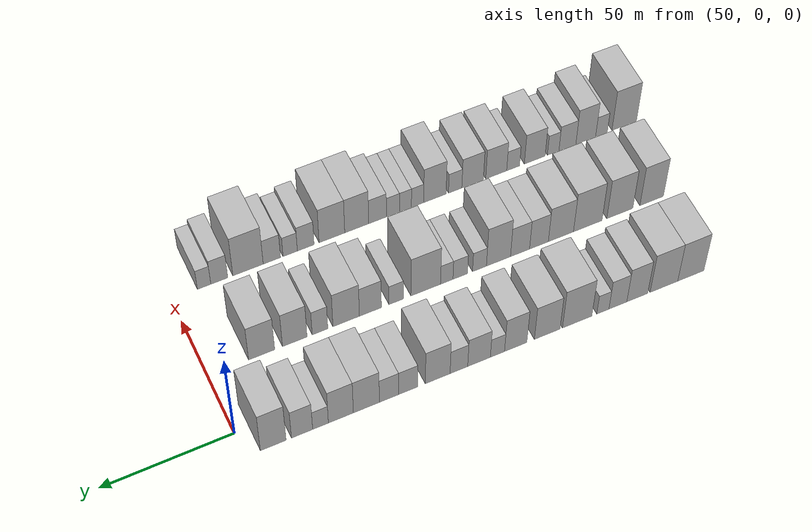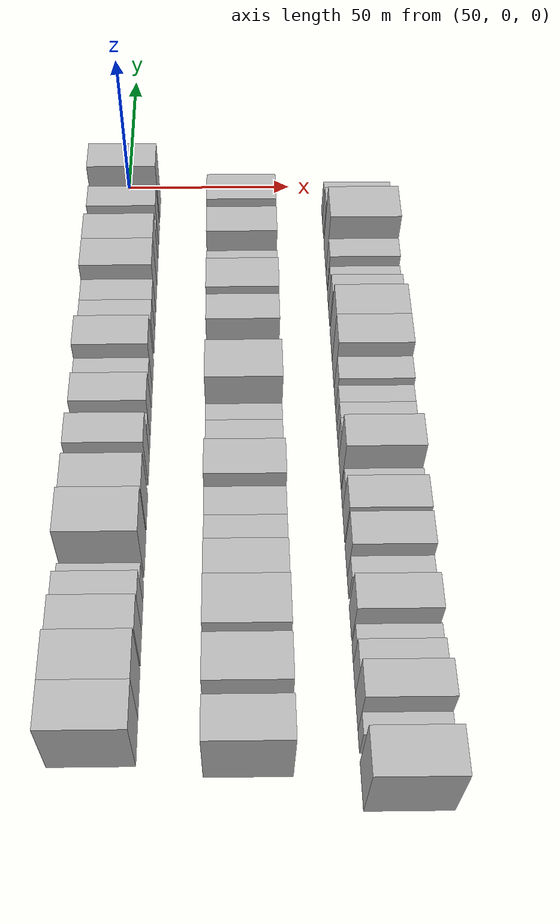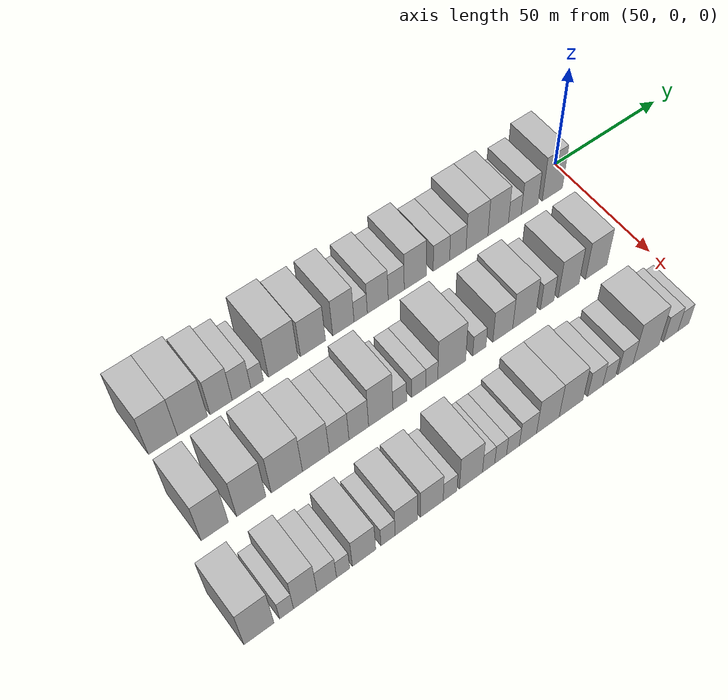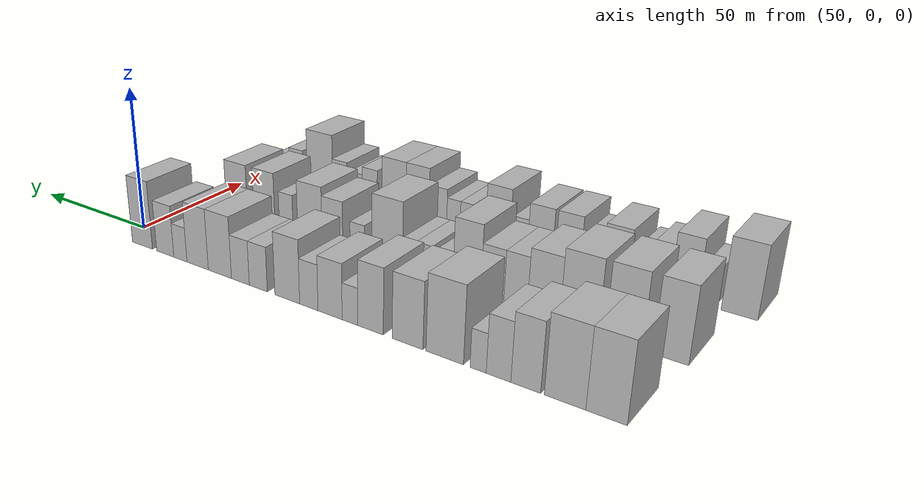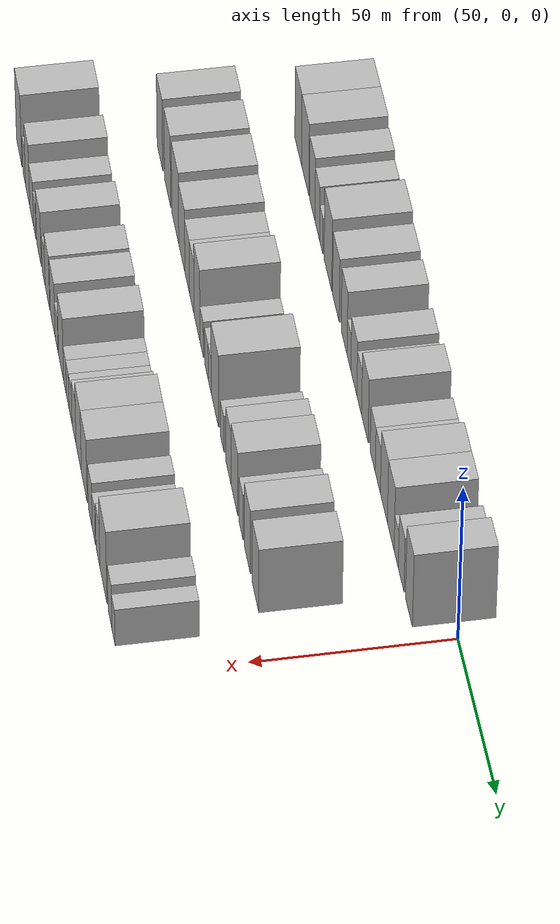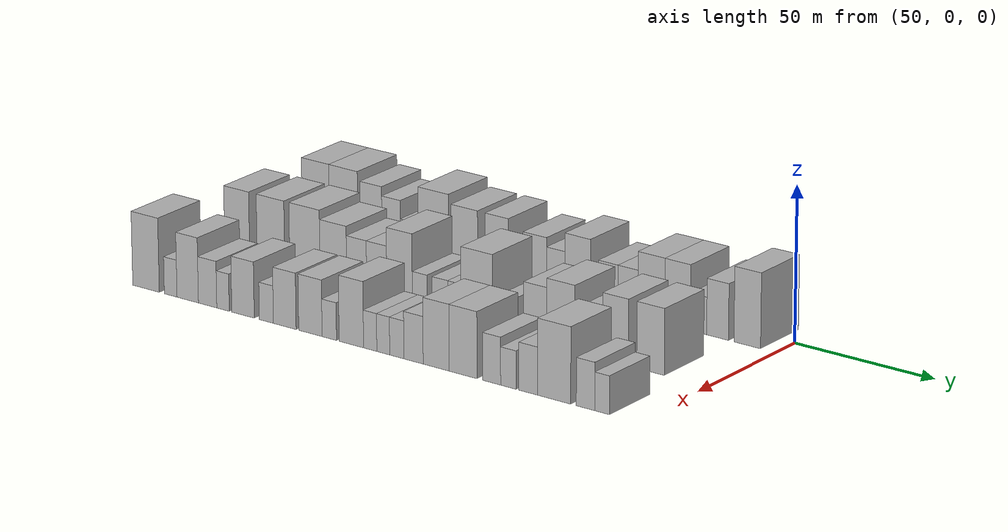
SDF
<sdf version="1.6">
 <world name="default">
  <model name="building_20">
   <static>1</static>
   <pose>50.0000 -174.9886 0 0.000000 0.000000 0.000000</pose>
   <link name="link">
    <pose>0 0 12.00 0 0 0</pose>
    <collision name="collision"><geometry><box><size>20.0000 10.8670 24.0000</size></box></geometry></collision>
    <visual name="visual">
     <cast_shadows>0</cast_shadows>
     <geometry><box><size>20.0000 10.8670 24.0000</size></box></geometry>
     <material>
      <script>
       <uri>model://HANNAS_wall/materials/scripts</uri>
       <uri>model://HANNAS_wall/materials/textures</uri>
       <name>vrc/HANNAS_wall</name>
      </script>
     </material>
    </visual>
   </link>
  </model>
  <model name="building_21">
   <static>1</static>
   <pose>50.0000 -163.8630 0 0.000000 0.000000 0.000000</pose>
   <link name="link">
    <pose>0 0 12.00 0 0 0</pose>
    <collision name="collision"><geometry><box><size>20.0000 11.3841 24.0000</size></box></geometry></collision>
    <visual name="visual">
     <cast_shadows>0</cast_shadows>
     <geometry><box><size>20.0000 11.3841 24.0000</size></box></geometry>
     <material>
      <script>
       <uri>model://HANNAS_wall/materials/scripts</uri>
       <uri>model://HANNAS_wall/materials/textures</uri>
       <name>vrc/HANNAS_wall</name>
      </script>
     </material>
    </visual>
   </link>
  </model>
  <model name="building_22">
   <static>1</static>
   <pose>50.0000 -152.8875 0 0.000000 0.000000 0.000000</pose>
   <link name="link">
    <pose>0 0 10.50 0 0 0</pose>
    <collision name="collision"><geometry><box><size>20.0000 8.5671 21.0000</size></box></geometry></collision>
    <visual name="visual">
     <cast_shadows>0</cast_shadows>
     <geometry><box><size>20.0000 8.5671 21.0000</size></box></geometry>
     <material>
      <script>
       <uri>model://HANNAS_wall/materials/scripts</uri>
       <uri>model://HANNAS_wall/materials/textures</uri>
       <name>vrc/HANNAS_wall</name>
      </script>
     </material>
    </visual>
   </link>
  </model>
  <model name="building_23">
   <static>1</static>
   <pose>50.0000 -144.9525 0 0.000000 0.000000 0.000000</pose>
   <link name="link">
    <pose>0 0 9.00 0 0 0</pose>
    <collision name="collision"><geometry><box><size>20.0000 7.3028 18.0000</size></box></geometry></collision>
    <visual name="visual">
     <cast_shadows>0</cast_shadows>
     <geometry><box><size>20.0000 7.3028 18.0000</size></box></geometry>
     <material>
      <script>
       <uri>model://HANNAS_wall/materials/scripts</uri>
       <uri>model://HANNAS_wall/materials/textures</uri>
       <name>vrc/HANNAS_wall</name>
      </script>
     </material>
    </visual>
   </link>
  </model>
  <model name="building_24">
   <static>1</static>
   <pose>50.0000 -138.8365 0 0.000000 0.000000 0.000000</pose>
   <link name="link">
    <pose>0 0 6.00 0 0 0</pose>
    <collision name="collision"><geometry><box><size>20.0000 4.9293 12.0000</size></box></geometry></collision>
    <visual name="visual">
     <cast_shadows>0</cast_shadows>
     <geometry><box><size>20.0000 4.9293 12.0000</size></box></geometry>
     <material>
      <script>
       <uri>model://HANNAS_wall/materials/scripts</uri>
       <uri>model://HANNAS_wall/materials/textures</uri>
       <name>vrc/HANNAS_wall</name>
      </script>
     </material>
    </visual>
   </link>
  </model>
  <model name="building_25">
   <static>1</static>
   <pose>50.0000 -128.4378 0 0.000000 0.000000 0.000000</pose>
   <link name="link">
    <pose>0 0 12.00 0 0 0</pose>
    <collision name="collision"><geometry><box><size>20.0000 11.8682 24.0000</size></box></geometry></collision>
    <visual name="visual">
     <cast_shadows>0</cast_shadows>
     <geometry><box><size>20.0000 11.8682 24.0000</size></box></geometry>
     <material>
      <script>
       <uri>model://HANNAS_wall/materials/scripts</uri>
       <uri>model://HANNAS_wall/materials/textures</uri>
       <name>vrc/HANNAS_wall</name>
      </script>
     </material>
    </visual>
   </link>
  </model>
  <model name="building_26">
   <static>1</static>
   <pose>50.0000 -116.3749 0 0.000000 0.000000 0.000000</pose>
   <link name="link">
    <pose>0 0 10.50 0 0 0</pose>
    <collision name="collision"><geometry><box><size>20.0000 10.2575 21.0000</size></box></geometry></collision>
    <visual name="visual">
     <cast_shadows>0</cast_shadows>
     <geometry><box><size>20.0000 10.2575 21.0000</size></box></geometry>
     <material>
      <script>
       <uri>model://HANNAS_wall/materials/scripts</uri>
       <uri>model://HANNAS_wall/materials/textures</uri>
       <name>vrc/HANNAS_wall</name>
      </script>
     </material>
    </visual>
   </link>
  </model>
  <model name="building_27">
   <static>1</static>
   <pose>50.0000 -103.8052 0 0.000000 0.000000 0.000000</pose>
   <link name="link">
    <pose>0 0 10.50 0 0 0</pose>
    <collision name="collision"><geometry><box><size>20.0000 8.8818 21.0000</size></box></geometry></collision>
    <visual name="visual">
     <cast_shadows>0</cast_shadows>
     <geometry><box><size>20.0000 8.8818 21.0000</size></box></geometry>
     <material>
      <script>
       <uri>model://HANNAS_wall/materials/scripts</uri>
       <uri>model://HANNAS_wall/materials/textures</uri>
       <name>vrc/HANNAS_wall</name>
      </script>
     </material>
    </visual>
   </link>
  </model>
  <model name="building_28">
   <static>1</static>
   <pose>50.0000 -96.5634 0 0.000000 0.000000 0.000000</pose>
   <link name="link">
    <pose>0 0 6.00 0 0 0</pose>
    <collision name="collision"><geometry><box><size>20.0000 5.6019 12.0000</size></box></geometry></collision>
    <visual name="visual">
     <cast_shadows>0</cast_shadows>
     <geometry><box><size>20.0000 5.6019 12.0000</size></box></geometry>
     <material>
      <script>
       <uri>model://HANNAS_wall/materials/scripts</uri>
       <uri>model://HANNAS_wall/materials/textures</uri>
       <name>vrc/HANNAS_wall</name>
      </script>
     </material>
    </visual>
   </link>
  </model>
  <model name="building_29">
   <static>1</static>
   <pose>50.0000 -89.3069 0 0.000000 0.000000 0.000000</pose>
   <link name="link">
    <pose>0 0 9.00 0 0 0</pose>
    <collision name="collision"><geometry><box><size>20.0000 8.9112 18.0000</size></box></geometry></collision>
    <visual name="visual">
     <cast_shadows>0</cast_shadows>
     <geometry><box><size>20.0000 8.9112 18.0000</size></box></geometry>
     <material>
      <script>
       <uri>model://HANNAS_wall/materials/scripts</uri>
       <uri>model://HANNAS_wall/materials/textures</uri>
       <name>vrc/HANNAS_wall</name>
      </script>
     </material>
    </visual>
   </link>
  </model>
  <model name="building_30">
   <static>1</static>
   <pose>50.0000 -81.3925 0 0.000000 0.000000 0.000000</pose>
   <link name="link">
    <pose>0 0 7.50 0 0 0</pose>
    <collision name="collision"><geometry><box><size>20.0000 6.9176 15.0000</size></box></geometry></collision>
    <visual name="visual">
     <cast_shadows>0</cast_shadows>
     <geometry><box><size>20.0000 6.9176 15.0000</size></box></geometry>
     <material>
      <script>
       <uri>model://HANNAS_wall/materials/scripts</uri>
       <uri>model://HANNAS_wall/materials/textures</uri>
       <name>vrc/HANNAS_wall</name>
      </script>
     </material>
    </visual>
   </link>
  </model>
  <model name="building_31">
   <static>1</static>
   <pose>50.0000 -73.1015 0 0.000000 0.000000 0.000000</pose>
   <link name="link">
    <pose>0 0 10.50 0 0 0</pose>
    <collision name="collision"><geometry><box><size>20.0000 9.6645 21.0000</size></box></geometry></collision>
    <visual name="visual">
     <cast_shadows>0</cast_shadows>
     <geometry><box><size>20.0000 9.6645 21.0000</size></box></geometry>
     <material>
      <script>
       <uri>model://HANNAS_wall/materials/scripts</uri>
       <uri>model://HANNAS_wall/materials/textures</uri>
       <name>vrc/HANNAS_wall</name>
      </script>
     </material>
    </visual>
   </link>
  </model>
  <model name="building_32">
   <static>1</static>
   <pose>50.0000 -61.6101 0 0.000000 0.000000 0.000000</pose>
   <link name="link">
    <pose>0 0 7.50 0 0 0</pose>
    <collision name="collision"><geometry><box><size>20.0000 7.3183 15.0000</size></box></geometry></collision>
    <visual name="visual">
     <cast_shadows>0</cast_shadows>
     <geometry><box><size>20.0000 7.3183 15.0000</size></box></geometry>
     <material>
      <script>
       <uri>model://HANNAS_wall/materials/scripts</uri>
       <uri>model://HANNAS_wall/materials/textures</uri>
       <name>vrc/HANNAS_wall</name>
      </script>
     </material>
    </visual>
   </link>
  </model>
  <model name="building_33">
   <static>1</static>
   <pose>50.0000 -54.2513 0 0.000000 0.000000 0.000000</pose>
   <link name="link">
    <pose>0 0 7.50 0 0 0</pose>
    <collision name="collision"><geometry><box><size>20.0000 7.3994 15.0000</size></box></geometry></collision>
    <visual name="visual">
     <cast_shadows>0</cast_shadows>
     <geometry><box><size>20.0000 7.3994 15.0000</size></box></geometry>
     <material>
      <script>
       <uri>model://HANNAS_wall/materials/scripts</uri>
       <uri>model://HANNAS_wall/materials/textures</uri>
       <name>vrc/HANNAS_wall</name>
      </script>
     </material>
    </visual>
   </link>
  </model>
  <model name="building_34">
   <static>1</static>
   <pose>50.0000 -45.5678 0 0.000000 0.000000 0.000000</pose>
   <link name="link">
    <pose>0 0 10.50 0 0 0</pose>
    <collision name="collision"><geometry><box><size>20.0000 9.9676 21.0000</size></box></geometry></collision>
    <visual name="visual">
     <cast_shadows>0</cast_shadows>
     <geometry><box><size>20.0000 9.9676 21.0000</size></box></geometry>
     <material>
      <script>
       <uri>model://HANNAS_wall/materials/scripts</uri>
       <uri>model://HANNAS_wall/materials/textures</uri>
       <name>vrc/HANNAS_wall</name>
      </script>
     </material>
    </visual>
   </link>
  </model>
  <model name="building_35">
   <static>1</static>
   <pose>50.0000 -35.8391 0 0.000000 0.000000 0.000000</pose>
   <link name="link">
    <pose>0 0 10.50 0 0 0</pose>
    <collision name="collision"><geometry><box><size>20.0000 9.4897 21.0000</size></box></geometry></collision>
    <visual name="visual">
     <cast_shadows>0</cast_shadows>
     <geometry><box><size>20.0000 9.4897 21.0000</size></box></geometry>
     <material>
      <script>
       <uri>model://HANNAS_wall/materials/scripts</uri>
       <uri>model://HANNAS_wall/materials/textures</uri>
       <name>vrc/HANNAS_wall</name>
      </script>
     </material>
    </visual>
   </link>
  </model>
  <model name="building_36">
   <static>1</static>
   <pose>50.0000 -28.1138 0 0.000000 0.000000 0.000000</pose>
   <link name="link">
    <pose>0 0 6.00 0 0 0</pose>
    <collision name="collision"><geometry><box><size>20.0000 5.9609 12.0000</size></box></geometry></collision>
    <visual name="visual">
     <cast_shadows>0</cast_shadows>
     <geometry><box><size>20.0000 5.9609 12.0000</size></box></geometry>
     <material>
      <script>
       <uri>model://HANNAS_wall/materials/scripts</uri>
       <uri>model://HANNAS_wall/materials/textures</uri>
       <name>vrc/HANNAS_wall</name>
      </script>
     </material>
    </visual>
   </link>
  </model>
  <model name="building_37">
   <static>1</static>
   <pose>50.0000 -21.1449 0 0.000000 0.000000 0.000000</pose>
   <link name="link">
    <pose>0 0 9.00 0 0 0</pose>
    <collision name="collision"><geometry><box><size>20.0000 7.9767 18.0000</size></box></geometry></collision>
    <visual name="visual">
     <cast_shadows>0</cast_shadows>
     <geometry><box><size>20.0000 7.9767 18.0000</size></box></geometry>
     <material>
      <script>
       <uri>model://HANNAS_wall/materials/scripts</uri>
       <uri>model://HANNAS_wall/materials/textures</uri>
       <name>vrc/HANNAS_wall</name>
      </script>
     </material>
    </visual>
   </link>
  </model>
  <model name="building_38">
   <static>1</static>
   <pose>50.0000 -10.3359 0 0.000000 0.000000 0.000000</pose>
   <link name="link">
    <pose>0 0 12.00 0 0 0</pose>
    <collision name="collision"><geometry><box><size>20.0000 9.6413 24.0000</size></box></geometry></collision>
    <visual name="visual">
     <cast_shadows>0</cast_shadows>
     <geometry><box><size>20.0000 9.6413 24.0000</size></box></geometry>
     <material>
      <script>
       <uri>model://HANNAS_wall/materials/scripts</uri>
       <uri>model://HANNAS_wall/materials/textures</uri>
       <name>vrc/HANNAS_wall</name>
      </script>
     </material>
    </visual>
   </link>
  </model>
  <model name="building_99">
   <static>1</static>
   <pose>85.0000 -178.0086 0 0.000000 0.000000 0.000000</pose>
   <link name="link">
    <pose>0 0 12.00 0 0 0</pose>
    <collision name="collision"><geometry><box><size>20.0000 9.9465 24.0000</size></box></geometry></collision>
    <visual name="visual">
     <cast_shadows>0</cast_shadows>
     <geometry><box><size>20.0000 9.9465 24.0000</size></box></geometry>
     <material>
      <script>
       <uri>model://HANNAS_wall/materials/scripts</uri>
       <uri>model://HANNAS_wall/materials/textures</uri>
       <name>vrc/HANNAS_wall</name>
      </script>
     </material>
    </visual>
   </link>
  </model>
  <model name="building_100">
   <static>1</static>
   <pose>85.0000 -164.5697 0 0.000000 0.000000 0.000000</pose>
   <link name="link">
    <pose>0 0 12.00 0 0 0</pose>
    <collision name="collision"><geometry><box><size>20.0000 10.9312 24.0000</size></box></geometry></collision>
    <visual name="visual">
     <cast_shadows>0</cast_shadows>
     <geometry><box><size>20.0000 10.9312 24.0000</size></box></geometry>
     <material>
      <script>
       <uri>model://HANNAS_wall/materials/scripts</uri>
       <uri>model://HANNAS_wall/materials/textures</uri>
       <name>vrc/HANNAS_wall</name>
      </script>
     </material>
    </visual>
   </link>
  </model>
  <model name="building_101">
   <static>1</static>
   <pose>85.0000 -151.1575 0 0.000000 0.000000 0.000000</pose>
   <link name="link">
    <pose>0 0 12.00 0 0 0</pose>
    <collision name="collision"><geometry><box><size>20.0000 11.8933 24.0000</size></box></geometry></collision>
    <visual name="visual">
     <cast_shadows>0</cast_shadows>
     <geometry><box><size>20.0000 11.8933 24.0000</size></box></geometry>
     <material>
      <script>
       <uri>model://HANNAS_wall/materials/scripts</uri>
       <uri>model://HANNAS_wall/materials/textures</uri>
       <name>vrc/HANNAS_wall</name>
      </script>
     </material>
    </visual>
   </link>
  </model>
  <model name="building_102">
   <static>1</static>
   <pose>85.0000 -140.0071 0 0.000000 0.000000 0.000000</pose>
   <link name="link">
    <pose>0 0 10.50 0 0 0</pose>
    <collision name="collision"><geometry><box><size>20.0000 10.4074 21.0000</size></box></geometry></collision>
    <visual name="visual">
     <cast_shadows>0</cast_shadows>
     <geometry><box><size>20.0000 10.4074 21.0000</size></box></geometry>
     <material>
      <script>
       <uri>model://HANNAS_wall/materials/scripts</uri>
       <uri>model://HANNAS_wall/materials/textures</uri>
       <name>vrc/HANNAS_wall</name>
      </script>
     </material>
    </visual>
   </link>
  </model>
  <model name="building_103">
   <static>1</static>
   <pose>85.0000 -130.9282 0 0.000000 0.000000 0.000000</pose>
   <link name="link">
    <pose>0 0 9.00 0 0 0</pose>
    <collision name="collision"><geometry><box><size>20.0000 7.7504 18.0000</size></box></geometry></collision>
    <visual name="visual">
     <cast_shadows>0</cast_shadows>
     <geometry><box><size>20.0000 7.7504 18.0000</size></box></geometry>
     <material>
      <script>
       <uri>model://HANNAS_wall/materials/scripts</uri>
       <uri>model://HANNAS_wall/materials/textures</uri>
       <name>vrc/HANNAS_wall</name>
      </script>
     </material>
    </visual>
   </link>
  </model>
  <model name="building_104">
   <static>1</static>
   <pose>85.0000 -123.1555 0 0.000000 0.000000 0.000000</pose>
   <link name="link">
    <pose>0 0 9.00 0 0 0</pose>
    <collision name="collision"><geometry><box><size>20.0000 7.7949 18.0000</size></box></geometry></collision>
    <visual name="visual">
     <cast_shadows>0</cast_shadows>
     <geometry><box><size>20.0000 7.7949 18.0000</size></box></geometry>
     <material>
      <script>
       <uri>model://HANNAS_wall/materials/scripts</uri>
       <uri>model://HANNAS_wall/materials/textures</uri>
       <name>vrc/HANNAS_wall</name>
      </script>
     </material>
    </visual>
   </link>
  </model>
  <model name="building_105">
   <static>1</static>
   <pose>85.0000 -114.3521 0 0.000000 0.000000 0.000000</pose>
   <link name="link">
    <pose>0 0 12.00 0 0 0</pose>
    <collision name="collision"><geometry><box><size>20.0000 9.8120 24.0000</size></box></geometry></collision>
    <visual name="visual">
     <cast_shadows>0</cast_shadows>
     <geometry><box><size>20.0000 9.8120 24.0000</size></box></geometry>
     <material>
      <script>
       <uri>model://HANNAS_wall/materials/scripts</uri>
       <uri>model://HANNAS_wall/materials/textures</uri>
       <name>vrc/HANNAS_wall</name>
      </script>
     </material>
    </visual>
   </link>
  </model>
  <model name="building_106">
   <static>1</static>
   <pose>85.0000 -106.6279 0 0.000000 0.000000 0.000000</pose>
   <link name="link">
    <pose>0 0 6.00 0 0 0</pose>
    <collision name="collision"><geometry><box><size>20.0000 5.6365 12.0000</size></box></geometry></collision>
    <visual name="visual">
     <cast_shadows>0</cast_shadows>
     <geometry><box><size>20.0000 5.6365 12.0000</size></box></geometry>
     <material>
      <script>
       <uri>model://HANNAS_wall/materials/scripts</uri>
       <uri>model://HANNAS_wall/materials/textures</uri>
       <name>vrc/HANNAS_wall</name>
      </script>
     </material>
    </visual>
   </link>
  </model>
  <model name="building_107">
   <static>1</static>
   <pose>85.0000 -98.8685 0 0.000000 0.000000 0.000000</pose>
   <link name="link">
    <pose>0 0 6.00 0 0 0</pose>
    <collision name="collision"><geometry><box><size>20.0000 5.8823 12.0000</size></box></geometry></collision>
    <visual name="visual">
     <cast_shadows>0</cast_shadows>
     <geometry><box><size>20.0000 5.8823 12.0000</size></box></geometry>
     <material>
      <script>
       <uri>model://HANNAS_wall/materials/scripts</uri>
       <uri>model://HANNAS_wall/materials/textures</uri>
       <name>vrc/HANNAS_wall</name>
      </script>
     </material>
    </visual>
   </link>
  </model>
  <model name="building_108">
   <static>1</static>
   <pose>85.0000 -93.4134 0 0.000000 0.000000 0.000000</pose>
   <link name="link">
    <pose>0 0 6.00 0 0 0</pose>
    <collision name="collision"><geometry><box><size>20.0000 5.0279 12.0000</size></box></geometry></collision>
    <visual name="visual">
     <cast_shadows>0</cast_shadows>
     <geometry><box><size>20.0000 5.0279 12.0000</size></box></geometry>
     <material>
      <script>
       <uri>model://HANNAS_wall/materials/scripts</uri>
       <uri>model://HANNAS_wall/materials/textures</uri>
       <name>vrc/HANNAS_wall</name>
      </script>
     </material>
    </visual>
   </link>
  </model>
  <model name="building_109">
   <static>1</static>
   <pose>85.0000 -84.9789 0 0.000000 0.000000 0.000000</pose>
   <link name="link">
    <pose>0 0 12.00 0 0 0</pose>
    <collision name="collision"><geometry><box><size>20.0000 11.8411 24.0000</size></box></geometry></collision>
    <visual name="visual">
     <cast_shadows>0</cast_shadows>
     <geometry><box><size>20.0000 11.8411 24.0000</size></box></geometry>
     <material>
      <script>
       <uri>model://HANNAS_wall/materials/scripts</uri>
       <uri>model://HANNAS_wall/materials/textures</uri>
       <name>vrc/HANNAS_wall</name>
      </script>
     </material>
    </visual>
   </link>
  </model>
  <model name="building_110">
   <static>1</static>
   <pose>85.0000 -73.2038 0 0.000000 0.000000 0.000000</pose>
   <link name="link">
    <pose>0 0 6.00 0 0 0</pose>
    <collision name="collision"><geometry><box><size>20.0000 5.7091 12.0000</size></box></geometry></collision>
    <visual name="visual">
     <cast_shadows>0</cast_shadows>
     <geometry><box><size>20.0000 5.7091 12.0000</size></box></geometry>
     <material>
      <script>
       <uri>model://HANNAS_wall/materials/scripts</uri>
       <uri>model://HANNAS_wall/materials/textures</uri>
       <name>vrc/HANNAS_wall</name>
      </script>
     </material>
    </visual>
   </link>
  </model>
  <model name="building_111">
   <static>1</static>
   <pose>85.0000 -63.0033 0 0.000000 0.000000 0.000000</pose>
   <link name="link">
    <pose>0 0 9.00 0 0 0</pose>
    <collision name="collision"><geometry><box><size>20.0000 8.6919 18.0000</size></box></geometry></collision>
    <visual name="visual">
     <cast_shadows>0</cast_shadows>
     <geometry><box><size>20.0000 8.6919 18.0000</size></box></geometry>
     <material>
      <script>
       <uri>model://HANNAS_wall/materials/scripts</uri>
       <uri>model://HANNAS_wall/materials/textures</uri>
       <name>vrc/HANNAS_wall</name>
      </script>
     </material>
    </visual>
   </link>
  </model>
  <model name="building_112">
   <static>1</static>
   <pose>85.0000 -53.4762 0 0.000000 0.000000 0.000000</pose>
   <link name="link">
    <pose>0 0 10.50 0 0 0</pose>
    <collision name="collision"><geometry><box><size>20.0000 10.3623 21.0000</size></box></geometry></collision>
    <visual name="visual">
     <cast_shadows>0</cast_shadows>
     <geometry><box><size>20.0000 10.3623 21.0000</size></box></geometry>
     <material>
      <script>
       <uri>model://HANNAS_wall/materials/scripts</uri>
       <uri>model://HANNAS_wall/materials/textures</uri>
       <name>vrc/HANNAS_wall</name>
      </script>
     </material>
    </visual>
   </link>
  </model>
  <model name="building_113">
   <static>1</static>
   <pose>85.0000 -43.2516 0 0.000000 0.000000 0.000000</pose>
   <link name="link">
    <pose>0 0 7.50 0 0 0</pose>
    <collision name="collision"><geometry><box><size>20.0000 6.0868 15.0000</size></box></geometry></collision>
    <visual name="visual">
     <cast_shadows>0</cast_shadows>
     <geometry><box><size>20.0000 6.0868 15.0000</size></box></geometry>
     <material>
      <script>
       <uri>model://HANNAS_wall/materials/scripts</uri>
       <uri>model://HANNAS_wall/materials/textures</uri>
       <name>vrc/HANNAS_wall</name>
      </script>
     </material>
    </visual>
   </link>
  </model>
  <model name="building_114">
   <static>1</static>
   <pose>85.0000 -33.4484 0 0.000000 0.000000 0.000000</pose>
   <link name="link">
    <pose>0 0 10.50 0 0 0</pose>
    <collision name="collision"><geometry><box><size>20.0000 9.5197 21.0000</size></box></geometry></collision>
    <visual name="visual">
     <cast_shadows>0</cast_shadows>
     <geometry><box><size>20.0000 9.5197 21.0000</size></box></geometry>
     <material>
      <script>
       <uri>model://HANNAS_wall/materials/scripts</uri>
       <uri>model://HANNAS_wall/materials/textures</uri>
       <name>vrc/HANNAS_wall</name>
      </script>
     </material>
    </visual>
   </link>
  </model>
  <model name="building_115">
   <static>1</static>
   <pose>85.0000 -20.6767 0 0.000000 0.000000 0.000000</pose>
   <link name="link">
    <pose>0 0 10.50 0 0 0</pose>
    <collision name="collision"><geometry><box><size>20.0000 10.0237 21.0000</size></box></geometry></collision>
    <visual name="visual">
     <cast_shadows>0</cast_shadows>
     <geometry><box><size>20.0000 10.0237 21.0000</size></box></geometry>
     <material>
      <script>
       <uri>model://HANNAS_wall/materials/scripts</uri>
       <uri>model://HANNAS_wall/materials/textures</uri>
       <name>vrc/HANNAS_wall</name>
      </script>
     </material>
    </visual>
   </link>
  </model>
  <model name="building_174">
   <static>1</static>
   <pose>120.0000 -185.3029 0 0.000000 0.000000 0.000000</pose>
   <link name="link">
    <pose>0 0 12.00 0 0 0</pose>
    <collision name="collision"><geometry><box><size>20.0000 10.6075 24.0000</size></box></geometry></collision>
    <visual name="visual">
     <cast_shadows>0</cast_shadows>
     <geometry><box><size>20.0000 10.6075 24.0000</size></box></geometry>
     <material>
      <script>
       <uri>model://HANNAS_wall/materials/scripts</uri>
       <uri>model://HANNAS_wall/materials/textures</uri>
       <name>vrc/HANNAS_wall</name>
      </script>
     </material>
    </visual>
   </link>
  </model>
  <model name="building_175">
   <static>1</static>
   <pose>120.0000 -175.4822 0 0.000000 0.000000 0.000000</pose>
   <link name="link">
    <pose>0 0 6.00 0 0 0</pose>
    <collision name="collision"><geometry><box><size>20.0000 5.0339 12.0000</size></box></geometry></collision>
    <visual name="visual">
     <cast_shadows>0</cast_shadows>
     <geometry><box><size>20.0000 5.0339 12.0000</size></box></geometry>
     <material>
      <script>
       <uri>model://HANNAS_wall/materials/scripts</uri>
       <uri>model://HANNAS_wall/materials/textures</uri>
       <name>vrc/HANNAS_wall</name>
      </script>
     </material>
    </visual>
   </link>
  </model>
  <model name="building_176">
   <static>1</static>
   <pose>120.0000 -168.7279 0 0.000000 0.000000 0.000000</pose>
   <link name="link">
    <pose>0 0 10.50 0 0 0</pose>
    <collision name="collision"><geometry><box><size>20.0000 8.4747 21.0000</size></box></geometry></collision>
    <visual name="visual">
     <cast_shadows>0</cast_shadows>
     <geometry><box><size>20.0000 8.4747 21.0000</size></box></geometry>
     <material>
      <script>
       <uri>model://HANNAS_wall/materials/scripts</uri>
       <uri>model://HANNAS_wall/materials/textures</uri>
       <name>vrc/HANNAS_wall</name>
      </script>
     </material>
    </visual>
   </link>
  </model>
  <model name="building_177">
   <static>1</static>
   <pose>120.0000 -160.8773 0 0.000000 0.000000 0.000000</pose>
   <link name="link">
    <pose>0 0 7.50 0 0 0</pose>
    <collision name="collision"><geometry><box><size>20.0000 7.2266 15.0000</size></box></geometry></collision>
    <visual name="visual">
     <cast_shadows>0</cast_shadows>
     <geometry><box><size>20.0000 7.2266 15.0000</size></box></geometry>
     <material>
      <script>
       <uri>model://HANNAS_wall/materials/scripts</uri>
       <uri>model://HANNAS_wall/materials/textures</uri>
       <name>vrc/HANNAS_wall</name>
      </script>
     </material>
    </visual>
   </link>
  </model>
  <model name="building_178">
   <static>1</static>
   <pose>120.0000 -154.8233 0 0.000000 0.000000 0.000000</pose>
   <link name="link">
    <pose>0 0 6.00 0 0 0</pose>
    <collision name="collision"><geometry><box><size>20.0000 4.8812 12.0000</size></box></geometry></collision>
    <visual name="visual">
     <cast_shadows>0</cast_shadows>
     <geometry><box><size>20.0000 4.8812 12.0000</size></box></geometry>
     <material>
      <script>
       <uri>model://HANNAS_wall/materials/scripts</uri>
       <uri>model://HANNAS_wall/materials/textures</uri>
       <name>vrc/HANNAS_wall</name>
      </script>
     </material>
    </visual>
   </link>
  </model>
  <model name="building_179">
   <static>1</static>
   <pose>120.0000 -146.9950 0 0.000000 0.000000 0.000000</pose>
   <link name="link">
    <pose>0 0 9.00 0 0 0</pose>
    <collision name="collision"><geometry><box><size>20.0000 8.7755 18.0000</size></box></geometry></collision>
    <visual name="visual">
     <cast_shadows>0</cast_shadows>
     <geometry><box><size>20.0000 8.7755 18.0000</size></box></geometry>
     <material>
      <script>
       <uri>model://HANNAS_wall/materials/scripts</uri>
       <uri>model://HANNAS_wall/materials/textures</uri>
       <name>vrc/HANNAS_wall</name>
      </script>
     </material>
    </visual>
   </link>
  </model>
  <model name="building_180">
   <static>1</static>
   <pose>120.0000 -137.8871 0 0.000000 0.000000 0.000000</pose>
   <link name="link">
    <pose>0 0 6.00 0 0 0</pose>
    <collision name="collision"><geometry><box><size>20.0000 5.4401 12.0000</size></box></geometry></collision>
    <visual name="visual">
     <cast_shadows>0</cast_shadows>
     <geometry><box><size>20.0000 5.4401 12.0000</size></box></geometry>
     <material>
      <script>
       <uri>model://HANNAS_wall/materials/scripts</uri>
       <uri>model://HANNAS_wall/materials/textures</uri>
       <name>vrc/HANNAS_wall</name>
      </script>
     </material>
    </visual>
   </link>
  </model>
  <model name="building_181">
   <static>1</static>
   <pose>120.0000 -130.7833 0 0.000000 0.000000 0.000000</pose>
   <link name="link">
    <pose>0 0 9.00 0 0 0</pose>
    <collision name="collision"><geometry><box><size>20.0000 8.7676 18.0000</size></box></geometry></collision>
    <visual name="visual">
     <cast_shadows>0</cast_shadows>
     <geometry><box><size>20.0000 8.7676 18.0000</size></box></geometry>
     <material>
      <script>
       <uri>model://HANNAS_wall/materials/scripts</uri>
       <uri>model://HANNAS_wall/materials/textures</uri>
       <name>vrc/HANNAS_wall</name>
      </script>
     </material>
    </visual>
   </link>
  </model>
  <model name="building_182">
   <static>1</static>
   <pose>120.0000 -120.9175 0 0.000000 0.000000 0.000000</pose>
   <link name="link">
    <pose>0 0 9.00 0 0 0</pose>
    <collision name="collision"><geometry><box><size>20.0000 8.9641 18.0000</size></box></geometry></collision>
    <visual name="visual">
     <cast_shadows>0</cast_shadows>
     <geometry><box><size>20.0000 8.9641 18.0000</size></box></geometry>
     <material>
      <script>
       <uri>model://HANNAS_wall/materials/scripts</uri>
       <uri>model://HANNAS_wall/materials/textures</uri>
       <name>vrc/HANNAS_wall</name>
      </script>
     </material>
    </visual>
   </link>
  </model>
  <model name="building_183">
   <static>1</static>
   <pose>120.0000 -113.6736 0 0.000000 0.000000 0.000000</pose>
   <link name="link">
    <pose>0 0 6.00 0 0 0</pose>
    <collision name="collision"><geometry><box><size>20.0000 5.5237 12.0000</size></box></geometry></collision>
    <visual name="visual">
     <cast_shadows>0</cast_shadows>
     <geometry><box><size>20.0000 5.5237 12.0000</size></box></geometry>
     <material>
      <script>
       <uri>model://HANNAS_wall/materials/scripts</uri>
       <uri>model://HANNAS_wall/materials/textures</uri>
       <name>vrc/HANNAS_wall</name>
      </script>
     </material>
    </visual>
   </link>
  </model>
  <model name="building_184">
   <static>1</static>
   <pose>120.0000 -105.2766 0 0.000000 0.000000 0.000000</pose>
   <link name="link">
    <pose>0 0 10.50 0 0 0</pose>
    <collision name="collision"><geometry><box><size>20.0000 9.2703 21.0000</size></box></geometry></collision>
    <visual name="visual">
     <cast_shadows>0</cast_shadows>
     <geometry><box><size>20.0000 9.2703 21.0000</size></box></geometry>
     <material>
      <script>
       <uri>model://HANNAS_wall/materials/scripts</uri>
       <uri>model://HANNAS_wall/materials/textures</uri>
       <name>vrc/HANNAS_wall</name>
      </script>
     </material>
    </visual>
   </link>
  </model>
  <model name="building_185">
   <static>1</static>
   <pose>120.0000 -98.1300 0 0.000000 0.000000 0.000000</pose>
   <link name="link">
    <pose>0 0 6.00 0 0 0</pose>
    <collision name="collision"><geometry><box><size>20.0000 5.0229 12.0000</size></box></geometry></collision>
    <visual name="visual">
     <cast_shadows>0</cast_shadows>
     <geometry><box><size>20.0000 5.0229 12.0000</size></box></geometry>
     <material>
      <script>
       <uri>model://HANNAS_wall/materials/scripts</uri>
       <uri>model://HANNAS_wall/materials/textures</uri>
       <name>vrc/HANNAS_wall</name>
      </script>
     </material>
    </visual>
   </link>
  </model>
  <model name="building_186">
   <static>1</static>
   <pose>120.0000 -93.1897 0 0.000000 0.000000 0.000000</pose>
   <link name="link">
    <pose>0 0 6.00 0 0 0</pose>
    <collision name="collision"><geometry><box><size>20.0000 4.8578 12.0000</size></box></geometry></collision>
    <visual name="visual">
     <cast_shadows>0</cast_shadows>
     <geometry><box><size>20.0000 4.8578 12.0000</size></box></geometry>
     <material>
      <script>
       <uri>model://HANNAS_wall/materials/scripts</uri>
       <uri>model://HANNAS_wall/materials/textures</uri>
       <name>vrc/HANNAS_wall</name>
      </script>
     </material>
    </visual>
   </link>
  </model>
  <model name="building_187">
   <static>1</static>
   <pose>120.0000 -88.0887 0 0.000000 0.000000 0.000000</pose>
   <link name="link">
    <pose>0 0 6.00 0 0 0</pose>
    <collision name="collision"><geometry><box><size>20.0000 5.3440 12.0000</size></box></geometry></collision>
    <visual name="visual">
     <cast_shadows>0</cast_shadows>
     <geometry><box><size>20.0000 5.3440 12.0000</size></box></geometry>
     <material>
      <script>
       <uri>model://HANNAS_wall/materials/scripts</uri>
       <uri>model://HANNAS_wall/materials/textures</uri>
       <name>vrc/HANNAS_wall</name>
      </script>
     </material>
    </visual>
   </link>
  </model>
  <model name="building_188">
   <static>1</static>
   <pose>120.0000 -81.8094 0 0.000000 0.000000 0.000000</pose>
   <link name="link">
    <pose>0 0 7.50 0 0 0</pose>
    <collision name="collision"><geometry><box><size>20.0000 7.2147 15.0000</size></box></geometry></collision>
    <visual name="visual">
     <cast_shadows>0</cast_shadows>
     <geometry><box><size>20.0000 7.2147 15.0000</size></box></geometry>
     <material>
      <script>
       <uri>model://HANNAS_wall/materials/scripts</uri>
       <uri>model://HANNAS_wall/materials/textures</uri>
       <name>vrc/HANNAS_wall</name>
      </script>
     </material>
    </visual>
   </link>
  </model>
  <model name="building_189">
   <static>1</static>
   <pose>120.0000 -73.3617 0 0.000000 0.000000 0.000000</pose>
   <link name="link">
    <pose>0 0 10.50 0 0 0</pose>
    <collision name="collision"><geometry><box><size>20.0000 9.6806 21.0000</size></box></geometry></collision>
    <visual name="visual">
     <cast_shadows>0</cast_shadows>
     <geometry><box><size>20.0000 9.6806 21.0000</size></box></geometry>
     <material>
      <script>
       <uri>model://HANNAS_wall/materials/scripts</uri>
       <uri>model://HANNAS_wall/materials/textures</uri>
       <name>vrc/HANNAS_wall</name>
      </script>
     </material>
    </visual>
   </link>
  </model>
  <model name="building_190">
   <static>1</static>
   <pose>120.0000 -63.3588 0 0.000000 0.000000 0.000000</pose>
   <link name="link">
    <pose>0 0 10.50 0 0 0</pose>
    <collision name="collision"><geometry><box><size>20.0000 10.3252 21.0000</size></box></geometry></collision>
    <visual name="visual">
     <cast_shadows>0</cast_shadows>
     <geometry><box><size>20.0000 10.3252 21.0000</size></box></geometry>
     <material>
      <script>
       <uri>model://HANNAS_wall/materials/scripts</uri>
       <uri>model://HANNAS_wall/materials/textures</uri>
       <name>vrc/HANNAS_wall</name>
      </script>
     </material>
    </visual>
   </link>
  </model>
  <model name="building_191">
   <static>1</static>
   <pose>120.0000 -52.8573 0 0.000000 0.000000 0.000000</pose>
   <link name="link">
    <pose>0 0 7.50 0 0 0</pose>
    <collision name="collision"><geometry><box><size>20.0000 6.6778 15.0000</size></box></geometry></collision>
    <visual name="visual">
     <cast_shadows>0</cast_shadows>
     <geometry><box><size>20.0000 6.6778 15.0000</size></box></geometry>
     <material>
      <script>
       <uri>model://HANNAS_wall/materials/scripts</uri>
       <uri>model://HANNAS_wall/materials/textures</uri>
       <name>vrc/HANNAS_wall</name>
      </script>
     </material>
    </visual>
   </link>
  </model>
  <model name="building_192">
   <static>1</static>
   <pose>120.0000 -46.6724 0 0.000000 0.000000 0.000000</pose>
   <link name="link">
    <pose>0 0 6.00 0 0 0</pose>
    <collision name="collision"><geometry><box><size>20.0000 5.6918 12.0000</size></box></geometry></collision>
    <visual name="visual">
     <cast_shadows>0</cast_shadows>
     <geometry><box><size>20.0000 5.6918 12.0000</size></box></geometry>
     <material>
      <script>
       <uri>model://HANNAS_wall/materials/scripts</uri>
       <uri>model://HANNAS_wall/materials/textures</uri>
       <name>vrc/HANNAS_wall</name>
      </script>
     </material>
    </visual>
   </link>
  </model>
  <model name="building_193">
   <static>1</static>
   <pose>120.0000 -39.3958 0 0.000000 0.000000 0.000000</pose>
   <link name="link">
    <pose>0 0 7.50 0 0 0</pose>
    <collision name="collision"><geometry><box><size>20.0000 6.8615 15.0000</size></box></geometry></collision>
    <visual name="visual">
     <cast_shadows>0</cast_shadows>
     <geometry><box><size>20.0000 6.8615 15.0000</size></box></geometry>
     <material>
      <script>
       <uri>model://HANNAS_wall/materials/scripts</uri>
       <uri>model://HANNAS_wall/materials/textures</uri>
       <name>vrc/HANNAS_wall</name>
      </script>
     </material>
    </visual>
   </link>
  </model>
  <model name="building_194">
   <static>1</static>
   <pose>120.0000 -29.9924 0 0.000000 0.000000 0.000000</pose>
   <link name="link">
    <pose>0 0 12.00 0 0 0</pose>
    <collision name="collision"><geometry><box><size>20.0000 11.9453 24.0000</size></box></geometry></collision>
    <visual name="visual">
     <cast_shadows>0</cast_shadows>
     <geometry><box><size>20.0000 11.9453 24.0000</size></box></geometry>
     <material>
      <script>
       <uri>model://HANNAS_wall/materials/scripts</uri>
       <uri>model://HANNAS_wall/materials/textures</uri>
       <name>vrc/HANNAS_wall</name>
      </script>
     </material>
    </visual>
   </link>
  </model>
  <model name="building_195">
   <static>1</static>
   <pose>120.0000 -18.7057 0 0.000000 0.000000 0.000000</pose>
   <link name="link">
    <pose>0 0 7.50 0 0 0</pose>
    <collision name="collision"><geometry><box><size>20.0000 6.6281 15.0000</size></box></geometry></collision>
    <visual name="visual">
     <cast_shadows>0</cast_shadows>
     <geometry><box><size>20.0000 6.6281 15.0000</size></box></geometry>
     <material>
      <script>
       <uri>model://HANNAS_wall/materials/scripts</uri>
       <uri>model://HANNAS_wall/materials/textures</uri>
       <name>vrc/HANNAS_wall</name>
      </script>
     </material>
    </visual>
   </link>
  </model>
  <model name="building_196">
   <static>1</static>
   <pose>120.0000 -12.7754 0 0.000000 0.000000 0.000000</pose>
   <link name="link">
    <pose>0 0 6.00 0 0 0</pose>
    <collision name="collision"><geometry><box><size>20.0000 5.2327 12.0000</size></box></geometry></collision>
    <visual name="visual">
     <cast_shadows>0</cast_shadows>
     <geometry><box><size>20.0000 5.2327 12.0000</size></box></geometry>
     <material>
      <script>
       <uri>model://HANNAS_wall/materials/scripts</uri>
       <uri>model://HANNAS_wall/materials/textures</uri>
       <name>vrc/HANNAS_wall</name>
      </script>
     </material>
    </visual>
   </link>
  </model>
 </world>
</sdf>
